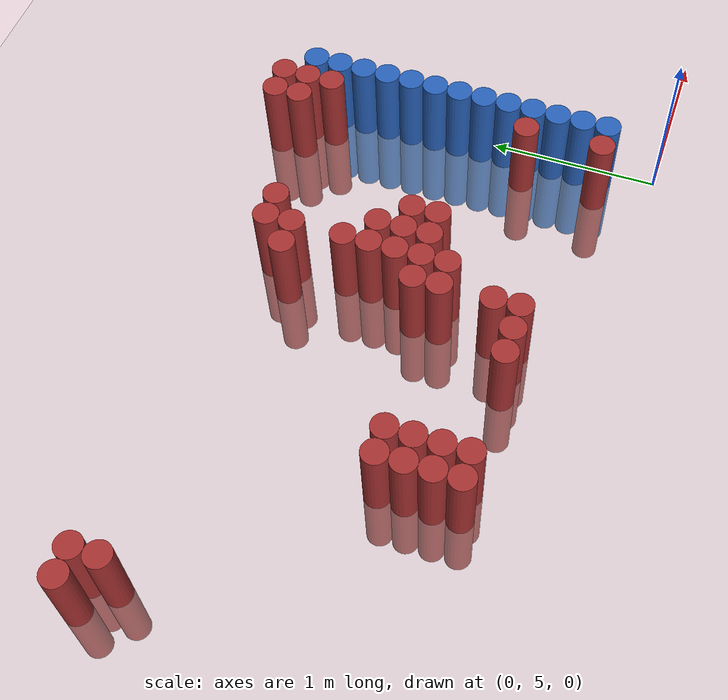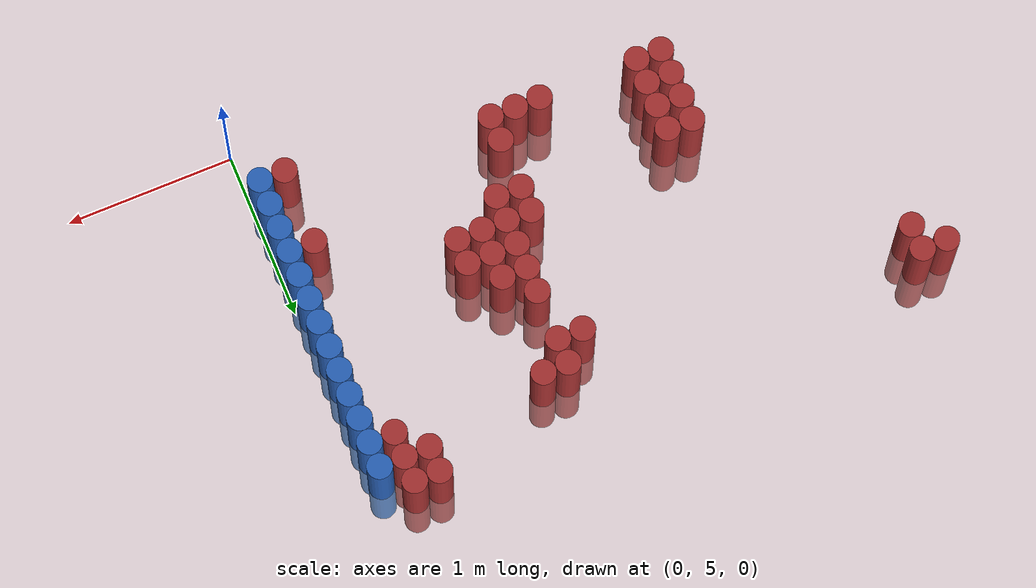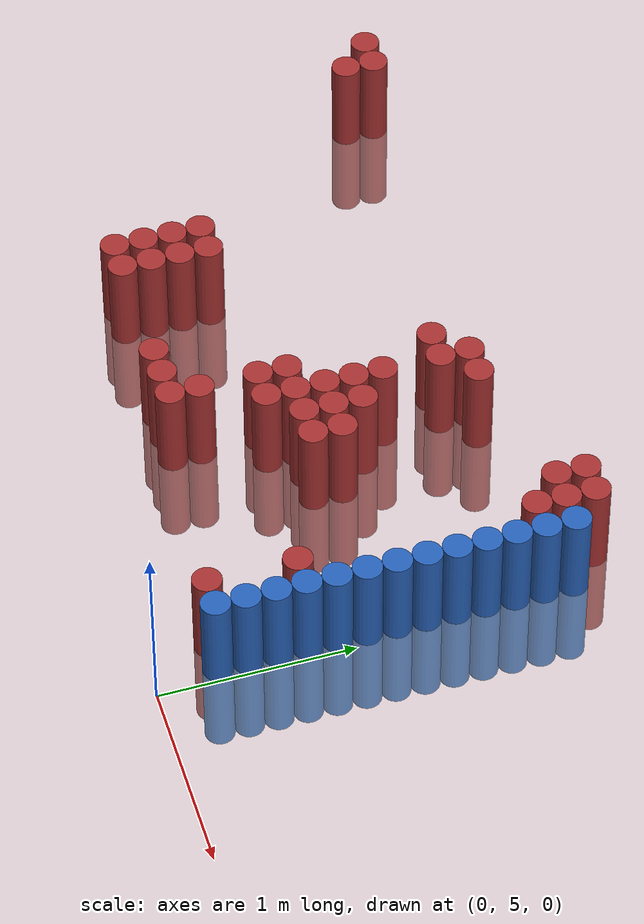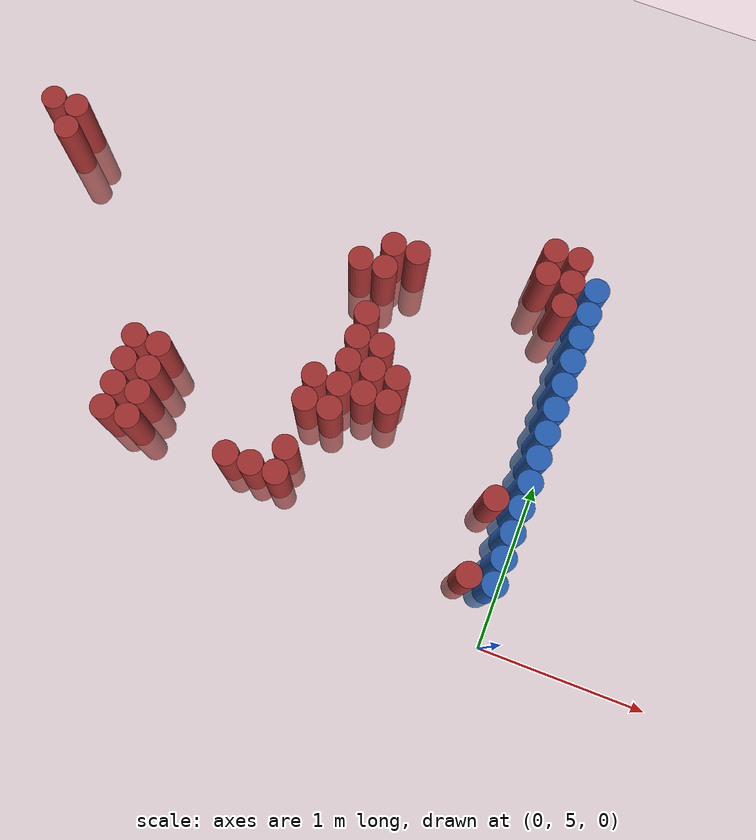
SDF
<sdf version="1.6">
 <world name="default">
  <model name="ground_plane">
   <static>1</static>
   <link name="link">
    <collision name="collision">
     <geometry><plane><normal>0 0 1</normal><size>100 100</size></plane></geometry>
     <surface><friction><ode><mu>100</mu><mu2>50</mu2></ode></friction></surface>
    </collision>
    <visual name="visual">
     <cast_shadows>0</cast_shadows>
     <geometry><plane><normal>0 0 1</normal><size>100 100</size></plane></geometry>
     <material>
      <script><uri>file://media/materials/scripts/gazebo.material</uri><name>Gazebo/Grey</name></script>
     </material>
    </visual>
   </link>
  </model>
  <model name="unit_cylinder_151">
   <static>1</static>
   <pose>-3.525000 7.125000 0.000000 0.000000 0.000000 0.000000</pose>
   <link name="link">
    <inertial>
     <mass>1</mass>
     <inertia><ixx>0.145833</ixx><ixy>0</ixy><ixz>0</ixz><iyy>0.145833</iyy><iyz>0</iyz><izz>0.125</izz></inertia>
    </inertial>
    <collision name="collision">
     <geometry><cylinder><radius>0.075000</radius><length>1</length></cylinder></geometry>
    </collision>
    <visual name="visual">
     <geometry><cylinder><radius>0.075000</radius><length>1</length></cylinder></geometry>
     <material>
      <ambient>0.648000 0.192000 0.192000 1</ambient>
      <diffuse>0.648000 0.192000 0.192000 1</diffuse>
     </material>
     <material>
      <script><name>Gazebo/Grey</name><uri>file://media/materials/scripts/gazebo.material</uri></script>
     </material>
    </visual>
   </link>
  </model>
  <model name="unit_cylinder_153">
   <static>1</static>
   <pose>-3.375000 6.975000 0.000000 0.000000 0.000000 0.000000</pose>
   <link name="link">
    <inertial>
     <mass>1</mass>
     <inertia><ixx>0.145833</ixx><ixy>0</ixy><ixz>0</ixz><iyy>0.145833</iyy><iyz>0</iyz><izz>0.125</izz></inertia>
    </inertial>
    <collision name="collision">
     <geometry><cylinder><radius>0.075000</radius><length>1</length></cylinder></geometry>
    </collision>
    <visual name="visual">
     <geometry><cylinder><radius>0.075000</radius><length>1</length></cylinder></geometry>
     <material>
      <ambient>0.648000 0.192000 0.192000 1</ambient>
      <diffuse>0.648000 0.192000 0.192000 1</diffuse>
     </material>
     <material>
      <script><name>Gazebo/Grey</name><uri>file://media/materials/scripts/gazebo.material</uri></script>
     </material>
    </visual>
   </link>
  </model>
  <model name="unit_cylinder_154">
   <static>1</static>
   <pose>-3.375000 7.125000 0.000000 0.000000 0.000000 0.000000</pose>
   <link name="link">
    <inertial>
     <mass>1</mass>
     <inertia><ixx>0.145833</ixx><ixy>0</ixy><ixz>0</ixz><iyy>0.145833</iyy><iyz>0</iyz><izz>0.125</izz></inertia>
    </inertial>
    <collision name="collision">
     <geometry><cylinder><radius>0.075000</radius><length>1</length></cylinder></geometry>
    </collision>
    <visual name="visual">
     <geometry><cylinder><radius>0.075000</radius><length>1</length></cylinder></geometry>
     <material>
      <ambient>0.648000 0.192000 0.192000 1</ambient>
      <diffuse>0.648000 0.192000 0.192000 1</diffuse>
     </material>
     <material>
      <script><name>Gazebo/Grey</name><uri>file://media/materials/scripts/gazebo.material</uri></script>
     </material>
    </visual>
   </link>
  </model>
  <model name="unit_cylinder_162">
   <static>1</static>
   <pose>-2.475000 5.475000 0.000000 0.000000 0.000000 0.000000</pose>
   <link name="link">
    <inertial>
     <mass>1</mass>
     <inertia><ixx>0.145833</ixx><ixy>0</ixy><ixz>0</ixz><iyy>0.145833</iyy><iyz>0</iyz><izz>0.125</izz></inertia>
    </inertial>
    <collision name="collision">
     <geometry><cylinder><radius>0.075000</radius><length>1</length></cylinder></geometry>
    </collision>
    <visual name="visual">
     <geometry><cylinder><radius>0.075000</radius><length>1</length></cylinder></geometry>
     <material>
      <ambient>0.648000 0.192000 0.192000 1</ambient>
      <diffuse>0.648000 0.192000 0.192000 1</diffuse>
     </material>
     <material>
      <script><name>Gazebo/Grey</name><uri>file://media/materials/scripts/gazebo.material</uri></script>
     </material>
    </visual>
   </link>
  </model>
  <model name="unit_cylinder_163">
   <static>1</static>
   <pose>-2.475000 5.625000 0.000000 0.000000 0.000000 0.000000</pose>
   <link name="link">
    <inertial>
     <mass>1</mass>
     <inertia><ixx>0.145833</ixx><ixy>0</ixy><ixz>0</ixz><iyy>0.145833</iyy><iyz>0</iyz><izz>0.125</izz></inertia>
    </inertial>
    <collision name="collision">
     <geometry><cylinder><radius>0.075000</radius><length>1</length></cylinder></geometry>
    </collision>
    <visual name="visual">
     <geometry><cylinder><radius>0.075000</radius><length>1</length></cylinder></geometry>
     <material>
      <ambient>0.648000 0.192000 0.192000 1</ambient>
      <diffuse>0.648000 0.192000 0.192000 1</diffuse>
     </material>
     <material>
      <script><name>Gazebo/Grey</name><uri>file://media/materials/scripts/gazebo.material</uri></script>
     </material>
    </visual>
   </link>
  </model>
  <model name="unit_cylinder_164">
   <static>1</static>
   <pose>-2.475000 5.775000 0.000000 0.000000 0.000000 0.000000</pose>
   <link name="link">
    <inertial>
     <mass>1</mass>
     <inertia><ixx>0.145833</ixx><ixy>0</ixy><ixz>0</ixz><iyy>0.145833</iyy><iyz>0</iyz><izz>0.125</izz></inertia>
    </inertial>
    <collision name="collision">
     <geometry><cylinder><radius>0.075000</radius><length>1</length></cylinder></geometry>
    </collision>
    <visual name="visual">
     <geometry><cylinder><radius>0.075000</radius><length>1</length></cylinder></geometry>
     <material>
      <ambient>0.648000 0.192000 0.192000 1</ambient>
      <diffuse>0.648000 0.192000 0.192000 1</diffuse>
     </material>
     <material>
      <script><name>Gazebo/Grey</name><uri>file://media/materials/scripts/gazebo.material</uri></script>
     </material>
    </visual>
   </link>
  </model>
  <model name="unit_cylinder_165">
   <static>1</static>
   <pose>-2.475000 5.925000 0.000000 0.000000 0.000000 0.000000</pose>
   <link name="link">
    <inertial>
     <mass>1</mass>
     <inertia><ixx>0.145833</ixx><ixy>0</ixy><ixz>0</ixz><iyy>0.145833</iyy><iyz>0</iyz><izz>0.125</izz></inertia>
    </inertial>
    <collision name="collision">
     <geometry><cylinder><radius>0.075000</radius><length>1</length></cylinder></geometry>
    </collision>
    <visual name="visual">
     <geometry><cylinder><radius>0.075000</radius><length>1</length></cylinder></geometry>
     <material>
      <ambient>0.648000 0.192000 0.192000 1</ambient>
      <diffuse>0.648000 0.192000 0.192000 1</diffuse>
     </material>
     <material>
      <script><name>Gazebo/Grey</name><uri>file://media/materials/scripts/gazebo.material</uri></script>
     </material>
    </visual>
   </link>
  </model>
  <model name="unit_cylinder_166">
   <static>1</static>
   <pose>-2.325000 5.475000 0.000000 0.000000 0.000000 0.000000</pose>
   <link name="link">
    <inertial>
     <mass>1</mass>
     <inertia><ixx>0.145833</ixx><ixy>0</ixy><ixz>0</ixz><iyy>0.145833</iyy><iyz>0</iyz><izz>0.125</izz></inertia>
    </inertial>
    <collision name="collision">
     <geometry><cylinder><radius>0.075000</radius><length>1</length></cylinder></geometry>
    </collision>
    <visual name="visual">
     <geometry><cylinder><radius>0.075000</radius><length>1</length></cylinder></geometry>
     <material>
      <ambient>0.648000 0.192000 0.192000 1</ambient>
      <diffuse>0.648000 0.192000 0.192000 1</diffuse>
     </material>
     <material>
      <script><name>Gazebo/Grey</name><uri>file://media/materials/scripts/gazebo.material</uri></script>
     </material>
    </visual>
   </link>
  </model>
  <model name="unit_cylinder_167">
   <static>1</static>
   <pose>-2.325000 5.625000 0.000000 0.000000 0.000000 0.000000</pose>
   <link name="link">
    <inertial>
     <mass>1</mass>
     <inertia><ixx>0.145833</ixx><ixy>0</ixy><ixz>0</ixz><iyy>0.145833</iyy><iyz>0</iyz><izz>0.125</izz></inertia>
    </inertial>
    <collision name="collision">
     <geometry><cylinder><radius>0.075000</radius><length>1</length></cylinder></geometry>
    </collision>
    <visual name="visual">
     <geometry><cylinder><radius>0.075000</radius><length>1</length></cylinder></geometry>
     <material>
      <ambient>0.648000 0.192000 0.192000 1</ambient>
      <diffuse>0.648000 0.192000 0.192000 1</diffuse>
     </material>
     <material>
      <script><name>Gazebo/Grey</name><uri>file://media/materials/scripts/gazebo.material</uri></script>
     </material>
    </visual>
   </link>
  </model>
  <model name="unit_cylinder_168">
   <static>1</static>
   <pose>-2.325000 5.775000 0.000000 0.000000 0.000000 0.000000</pose>
   <link name="link">
    <inertial>
     <mass>1</mass>
     <inertia><ixx>0.145833</ixx><ixy>0</ixy><ixz>0</ixz><iyy>0.145833</iyy><iyz>0</iyz><izz>0.125</izz></inertia>
    </inertial>
    <collision name="collision">
     <geometry><cylinder><radius>0.075000</radius><length>1</length></cylinder></geometry>
    </collision>
    <visual name="visual">
     <geometry><cylinder><radius>0.075000</radius><length>1</length></cylinder></geometry>
     <material>
      <ambient>0.648000 0.192000 0.192000 1</ambient>
      <diffuse>0.648000 0.192000 0.192000 1</diffuse>
     </material>
     <material>
      <script><name>Gazebo/Grey</name><uri>file://media/materials/scripts/gazebo.material</uri></script>
     </material>
    </visual>
   </link>
  </model>
  <model name="unit_cylinder_169">
   <static>1</static>
   <pose>-2.325000 5.925000 0.000000 0.000000 0.000000 0.000000</pose>
   <link name="link">
    <inertial>
     <mass>1</mass>
     <inertia><ixx>0.145833</ixx><ixy>0</ixy><ixz>0</ixz><iyy>0.145833</iyy><iyz>0</iyz><izz>0.125</izz></inertia>
    </inertial>
    <collision name="collision">
     <geometry><cylinder><radius>0.075000</radius><length>1</length></cylinder></geometry>
    </collision>
    <visual name="visual">
     <geometry><cylinder><radius>0.075000</radius><length>1</length></cylinder></geometry>
     <material>
      <ambient>0.648000 0.192000 0.192000 1</ambient>
      <diffuse>0.648000 0.192000 0.192000 1</diffuse>
     </material>
     <material>
      <script><name>Gazebo/Grey</name><uri>file://media/materials/scripts/gazebo.material</uri></script>
     </material>
    </visual>
   </link>
  </model>
  <model name="unit_cylinder_179">
   <static>1</static>
   <pose>-1.725000 5.475000 0.000000 0.000000 0.000000 0.000000</pose>
   <link name="link">
    <inertial>
     <mass>1</mass>
     <inertia><ixx>0.145833</ixx><ixy>0</ixy><ixz>0</ixz><iyy>0.145833</iyy><iyz>0</iyz><izz>0.125</izz></inertia>
    </inertial>
    <collision name="collision">
     <geometry><cylinder><radius>0.075000</radius><length>1</length></cylinder></geometry>
    </collision>
    <visual name="visual">
     <geometry><cylinder><radius>0.075000</radius><length>1</length></cylinder></geometry>
     <material>
      <ambient>0.648000 0.192000 0.192000 1</ambient>
      <diffuse>0.648000 0.192000 0.192000 1</diffuse>
     </material>
     <material>
      <script><name>Gazebo/Grey</name><uri>file://media/materials/scripts/gazebo.material</uri></script>
     </material>
    </visual>
   </link>
  </model>
  <model name="unit_cylinder_183">
   <static>1</static>
   <pose>-1.575000 5.475000 0.000000 0.000000 0.000000 0.000000</pose>
   <link name="link">
    <inertial>
     <mass>1</mass>
     <inertia><ixx>0.145833</ixx><ixy>0</ixy><ixz>0</ixz><iyy>0.145833</iyy><iyz>0</iyz><izz>0.125</izz></inertia>
    </inertial>
    <collision name="collision">
     <geometry><cylinder><radius>0.075000</radius><length>1</length></cylinder></geometry>
    </collision>
    <visual name="visual">
     <geometry><cylinder><radius>0.075000</radius><length>1</length></cylinder></geometry>
     <material>
      <ambient>0.648000 0.192000 0.192000 1</ambient>
      <diffuse>0.648000 0.192000 0.192000 1</diffuse>
     </material>
     <material>
      <script><name>Gazebo/Grey</name><uri>file://media/materials/scripts/gazebo.material</uri></script>
     </material>
    </visual>
   </link>
  </model>
  <model name="unit_cylinder_185">
   <static>1</static>
   <pose>-1.425000 5.475000 0.000000 0.000000 0.000000 0.000000</pose>
   <link name="link">
    <inertial>
     <mass>1</mass>
     <inertia><ixx>0.145833</ixx><ixy>0</ixy><ixz>0</ixz><iyy>0.145833</iyy><iyz>0</iyz><izz>0.125</izz></inertia>
    </inertial>
    <collision name="collision">
     <geometry><cylinder><radius>0.075000</radius><length>1</length></cylinder></geometry>
    </collision>
    <visual name="visual">
     <geometry><cylinder><radius>0.075000</radius><length>1</length></cylinder></geometry>
     <material>
      <ambient>0.648000 0.192000 0.192000 1</ambient>
      <diffuse>0.648000 0.192000 0.192000 1</diffuse>
     </material>
     <material>
      <script><name>Gazebo/Grey</name><uri>file://media/materials/scripts/gazebo.material</uri></script>
     </material>
    </visual>
   </link>
  </model>
  <model name="unit_cylinder_186">
   <static>1</static>
   <pose>-1.425000 5.625000 0.000000 0.000000 0.000000 0.000000</pose>
   <link name="link">
    <inertial>
     <mass>1</mass>
     <inertia><ixx>0.145833</ixx><ixy>0</ixy><ixz>0</ixz><iyy>0.145833</iyy><iyz>0</iyz><izz>0.125</izz></inertia>
    </inertial>
    <collision name="collision">
     <geometry><cylinder><radius>0.075000</radius><length>1</length></cylinder></geometry>
    </collision>
    <visual name="visual">
     <geometry><cylinder><radius>0.075000</radius><length>1</length></cylinder></geometry>
     <material>
      <ambient>0.648000 0.192000 0.192000 1</ambient>
      <diffuse>0.648000 0.192000 0.192000 1</diffuse>
     </material>
     <material>
      <script><name>Gazebo/Grey</name><uri>file://media/materials/scripts/gazebo.material</uri></script>
     </material>
    </visual>
   </link>
  </model>
  <model name="unit_cylinder_187">
   <static>1</static>
   <pose>-1.425000 5.925000 0.000000 0.000000 0.000000 0.000000</pose>
   <link name="link">
    <inertial>
     <mass>1</mass>
     <inertia><ixx>0.145833</ixx><ixy>0</ixy><ixz>0</ixz><iyy>0.145833</iyy><iyz>0</iyz><izz>0.125</izz></inertia>
    </inertial>
    <collision name="collision">
     <geometry><cylinder><radius>0.075000</radius><length>1</length></cylinder></geometry>
    </collision>
    <visual name="visual">
     <geometry><cylinder><radius>0.075000</radius><length>1</length></cylinder></geometry>
     <material>
      <ambient>0.648000 0.192000 0.192000 1</ambient>
      <diffuse>0.648000 0.192000 0.192000 1</diffuse>
     </material>
     <material>
      <script><name>Gazebo/Grey</name><uri>file://media/materials/scripts/gazebo.material</uri></script>
     </material>
    </visual>
   </link>
  </model>
  <model name="unit_cylinder_188">
   <static>1</static>
   <pose>-1.425000 6.075000 0.000000 0.000000 0.000000 0.000000</pose>
   <link name="link">
    <inertial>
     <mass>1</mass>
     <inertia><ixx>0.145833</ixx><ixy>0</ixy><ixz>0</ixz><iyy>0.145833</iyy><iyz>0</iyz><izz>0.125</izz></inertia>
    </inertial>
    <collision name="collision">
     <geometry><cylinder><radius>0.075000</radius><length>1</length></cylinder></geometry>
    </collision>
    <visual name="visual">
     <geometry><cylinder><radius>0.075000</radius><length>1</length></cylinder></geometry>
     <material>
      <ambient>0.648000 0.192000 0.192000 1</ambient>
      <diffuse>0.648000 0.192000 0.192000 1</diffuse>
     </material>
     <material>
      <script><name>Gazebo/Grey</name><uri>file://media/materials/scripts/gazebo.material</uri></script>
     </material>
    </visual>
   </link>
  </model>
  <model name="unit_cylinder_189">
   <static>1</static>
   <pose>-1.425000 6.825000 0.000000 0.000000 0.000000 0.000000</pose>
   <link name="link">
    <inertial>
     <mass>1</mass>
     <inertia><ixx>0.145833</ixx><ixy>0</ixy><ixz>0</ixz><iyy>0.145833</iyy><iyz>0</iyz><izz>0.125</izz></inertia>
    </inertial>
    <collision name="collision">
     <geometry><cylinder><radius>0.075000</radius><length>1</length></cylinder></geometry>
    </collision>
    <visual name="visual">
     <geometry><cylinder><radius>0.075000</radius><length>1</length></cylinder></geometry>
     <material>
      <ambient>0.648000 0.192000 0.192000 1</ambient>
      <diffuse>0.648000 0.192000 0.192000 1</diffuse>
     </material>
     <material>
      <script><name>Gazebo/Grey</name><uri>file://media/materials/scripts/gazebo.material</uri></script>
     </material>
    </visual>
   </link>
  </model>
  <model name="unit_cylinder_190">
   <static>1</static>
   <pose>-1.275000 5.925000 0.000000 0.000000 0.000000 0.000000</pose>
   <link name="link">
    <inertial>
     <mass>1</mass>
     <inertia><ixx>0.145833</ixx><ixy>0</ixy><ixz>0</ixz><iyy>0.145833</iyy><iyz>0</iyz><izz>0.125</izz></inertia>
    </inertial>
    <collision name="collision">
     <geometry><cylinder><radius>0.075000</radius><length>1</length></cylinder></geometry>
    </collision>
    <visual name="visual">
     <geometry><cylinder><radius>0.075000</radius><length>1</length></cylinder></geometry>
     <material>
      <ambient>0.648000 0.192000 0.192000 1</ambient>
      <diffuse>0.648000 0.192000 0.192000 1</diffuse>
     </material>
     <material>
      <script><name>Gazebo/Grey</name><uri>file://media/materials/scripts/gazebo.material</uri></script>
     </material>
    </visual>
   </link>
  </model>
  <model name="unit_cylinder_191">
   <static>1</static>
   <pose>-1.275000 6.075000 0.000000 0.000000 0.000000 0.000000</pose>
   <link name="link">
    <inertial>
     <mass>1</mass>
     <inertia><ixx>0.145833</ixx><ixy>0</ixy><ixz>0</ixz><iyy>0.145833</iyy><iyz>0</iyz><izz>0.125</izz></inertia>
    </inertial>
    <collision name="collision">
     <geometry><cylinder><radius>0.075000</radius><length>1</length></cylinder></geometry>
    </collision>
    <visual name="visual">
     <geometry><cylinder><radius>0.075000</radius><length>1</length></cylinder></geometry>
     <material>
      <ambient>0.648000 0.192000 0.192000 1</ambient>
      <diffuse>0.648000 0.192000 0.192000 1</diffuse>
     </material>
     <material>
      <script><name>Gazebo/Grey</name><uri>file://media/materials/scripts/gazebo.material</uri></script>
     </material>
    </visual>
   </link>
  </model>
  <model name="unit_cylinder_192">
   <static>1</static>
   <pose>-1.275000 6.225000 0.000000 0.000000 0.000000 0.000000</pose>
   <link name="link">
    <inertial>
     <mass>1</mass>
     <inertia><ixx>0.145833</ixx><ixy>0</ixy><ixz>0</ixz><iyy>0.145833</iyy><iyz>0</iyz><izz>0.125</izz></inertia>
    </inertial>
    <collision name="collision">
     <geometry><cylinder><radius>0.075000</radius><length>1</length></cylinder></geometry>
    </collision>
    <visual name="visual">
     <geometry><cylinder><radius>0.075000</radius><length>1</length></cylinder></geometry>
     <material>
      <ambient>0.648000 0.192000 0.192000 1</ambient>
      <diffuse>0.648000 0.192000 0.192000 1</diffuse>
     </material>
     <material>
      <script><name>Gazebo/Grey</name><uri>file://media/materials/scripts/gazebo.material</uri></script>
     </material>
    </visual>
   </link>
  </model>
  <model name="unit_cylinder_193">
   <static>1</static>
   <pose>-1.275000 6.375000 0.000000 0.000000 0.000000 0.000000</pose>
   <link name="link">
    <inertial>
     <mass>1</mass>
     <inertia><ixx>0.145833</ixx><ixy>0</ixy><ixz>0</ixz><iyy>0.145833</iyy><iyz>0</iyz><izz>0.125</izz></inertia>
    </inertial>
    <collision name="collision">
     <geometry><cylinder><radius>0.075000</radius><length>1</length></cylinder></geometry>
    </collision>
    <visual name="visual">
     <geometry><cylinder><radius>0.075000</radius><length>1</length></cylinder></geometry>
     <material>
      <ambient>0.648000 0.192000 0.192000 1</ambient>
      <diffuse>0.648000 0.192000 0.192000 1</diffuse>
     </material>
     <material>
      <script><name>Gazebo/Grey</name><uri>file://media/materials/scripts/gazebo.material</uri></script>
     </material>
    </visual>
   </link>
  </model>
  <model name="unit_cylinder_194">
   <static>1</static>
   <pose>-1.275000 6.525000 0.000000 0.000000 0.000000 0.000000</pose>
   <link name="link">
    <inertial>
     <mass>1</mass>
     <inertia><ixx>0.145833</ixx><ixy>0</ixy><ixz>0</ixz><iyy>0.145833</iyy><iyz>0</iyz><izz>0.125</izz></inertia>
    </inertial>
    <collision name="collision">
     <geometry><cylinder><radius>0.075000</radius><length>1</length></cylinder></geometry>
    </collision>
    <visual name="visual">
     <geometry><cylinder><radius>0.075000</radius><length>1</length></cylinder></geometry>
     <material>
      <ambient>0.648000 0.192000 0.192000 1</ambient>
      <diffuse>0.648000 0.192000 0.192000 1</diffuse>
     </material>
     <material>
      <script><name>Gazebo/Grey</name><uri>file://media/materials/scripts/gazebo.material</uri></script>
     </material>
    </visual>
   </link>
  </model>
  <model name="unit_cylinder_195">
   <static>1</static>
   <pose>-1.275000 6.825000 0.000000 0.000000 0.000000 0.000000</pose>
   <link name="link">
    <inertial>
     <mass>1</mass>
     <inertia><ixx>0.145833</ixx><ixy>0</ixy><ixz>0</ixz><iyy>0.145833</iyy><iyz>0</iyz><izz>0.125</izz></inertia>
    </inertial>
    <collision name="collision">
     <geometry><cylinder><radius>0.075000</radius><length>1</length></cylinder></geometry>
    </collision>
    <visual name="visual">
     <geometry><cylinder><radius>0.075000</radius><length>1</length></cylinder></geometry>
     <material>
      <ambient>0.648000 0.192000 0.192000 1</ambient>
      <diffuse>0.648000 0.192000 0.192000 1</diffuse>
     </material>
     <material>
      <script><name>Gazebo/Grey</name><uri>file://media/materials/scripts/gazebo.material</uri></script>
     </material>
    </visual>
   </link>
  </model>
  <model name="unit_cylinder_196">
   <static>1</static>
   <pose>-1.275000 6.975000 0.000000 0.000000 0.000000 0.000000</pose>
   <link name="link">
    <inertial>
     <mass>1</mass>
     <inertia><ixx>0.145833</ixx><ixy>0</ixy><ixz>0</ixz><iyy>0.145833</iyy><iyz>0</iyz><izz>0.125</izz></inertia>
    </inertial>
    <collision name="collision">
     <geometry><cylinder><radius>0.075000</radius><length>1</length></cylinder></geometry>
    </collision>
    <visual name="visual">
     <geometry><cylinder><radius>0.075000</radius><length>1</length></cylinder></geometry>
     <material>
      <ambient>0.648000 0.192000 0.192000 1</ambient>
      <diffuse>0.648000 0.192000 0.192000 1</diffuse>
     </material>
     <material>
      <script><name>Gazebo/Grey</name><uri>file://media/materials/scripts/gazebo.material</uri></script>
     </material>
    </visual>
   </link>
  </model>
  <model name="unit_cylinder_197">
   <static>1</static>
   <pose>-1.125000 6.075000 0.000000 0.000000 0.000000 0.000000</pose>
   <link name="link">
    <inertial>
     <mass>1</mass>
     <inertia><ixx>0.145833</ixx><ixy>0</ixy><ixz>0</ixz><iyy>0.145833</iyy><iyz>0</iyz><izz>0.125</izz></inertia>
    </inertial>
    <collision name="collision">
     <geometry><cylinder><radius>0.075000</radius><length>1</length></cylinder></geometry>
    </collision>
    <visual name="visual">
     <geometry><cylinder><radius>0.075000</radius><length>1</length></cylinder></geometry>
     <material>
      <ambient>0.648000 0.192000 0.192000 1</ambient>
      <diffuse>0.648000 0.192000 0.192000 1</diffuse>
     </material>
     <material>
      <script><name>Gazebo/Grey</name><uri>file://media/materials/scripts/gazebo.material</uri></script>
     </material>
    </visual>
   </link>
  </model>
  <model name="unit_cylinder_198">
   <static>1</static>
   <pose>-1.125000 6.225000 0.000000 0.000000 0.000000 0.000000</pose>
   <link name="link">
    <inertial>
     <mass>1</mass>
     <inertia><ixx>0.145833</ixx><ixy>0</ixy><ixz>0</ixz><iyy>0.145833</iyy><iyz>0</iyz><izz>0.125</izz></inertia>
    </inertial>
    <collision name="collision">
     <geometry><cylinder><radius>0.075000</radius><length>1</length></cylinder></geometry>
    </collision>
    <visual name="visual">
     <geometry><cylinder><radius>0.075000</radius><length>1</length></cylinder></geometry>
     <material>
      <ambient>0.648000 0.192000 0.192000 1</ambient>
      <diffuse>0.648000 0.192000 0.192000 1</diffuse>
     </material>
     <material>
      <script><name>Gazebo/Grey</name><uri>file://media/materials/scripts/gazebo.material</uri></script>
     </material>
    </visual>
   </link>
  </model>
  <model name="unit_cylinder_199">
   <static>1</static>
   <pose>-1.125000 6.375000 0.000000 0.000000 0.000000 0.000000</pose>
   <link name="link">
    <inertial>
     <mass>1</mass>
     <inertia><ixx>0.145833</ixx><ixy>0</ixy><ixz>0</ixz><iyy>0.145833</iyy><iyz>0</iyz><izz>0.125</izz></inertia>
    </inertial>
    <collision name="collision">
     <geometry><cylinder><radius>0.075000</radius><length>1</length></cylinder></geometry>
    </collision>
    <visual name="visual">
     <geometry><cylinder><radius>0.075000</radius><length>1</length></cylinder></geometry>
     <material>
      <ambient>0.648000 0.192000 0.192000 1</ambient>
      <diffuse>0.648000 0.192000 0.192000 1</diffuse>
     </material>
     <material>
      <script><name>Gazebo/Grey</name><uri>file://media/materials/scripts/gazebo.material</uri></script>
     </material>
    </visual>
   </link>
  </model>
  <model name="unit_cylinder_200">
   <static>1</static>
   <pose>-1.125000 6.975000 0.000000 0.000000 0.000000 0.000000</pose>
   <link name="link">
    <inertial>
     <mass>1</mass>
     <inertia><ixx>0.145833</ixx><ixy>0</ixy><ixz>0</ixz><iyy>0.145833</iyy><iyz>0</iyz><izz>0.125</izz></inertia>
    </inertial>
    <collision name="collision">
     <geometry><cylinder><radius>0.075000</radius><length>1</length></cylinder></geometry>
    </collision>
    <visual name="visual">
     <geometry><cylinder><radius>0.075000</radius><length>1</length></cylinder></geometry>
     <material>
      <ambient>0.648000 0.192000 0.192000 1</ambient>
      <diffuse>0.648000 0.192000 0.192000 1</diffuse>
     </material>
     <material>
      <script><name>Gazebo/Grey</name><uri>file://media/materials/scripts/gazebo.material</uri></script>
     </material>
    </visual>
   </link>
  </model>
  <model name="unit_cylinder_204">
   <static>1</static>
   <pose>-0.975000 6.075000 0.000000 0.000000 0.000000 0.000000</pose>
   <link name="link">
    <inertial>
     <mass>1</mass>
     <inertia><ixx>0.145833</ixx><ixy>0</ixy><ixz>0</ixz><iyy>0.145833</iyy><iyz>0</iyz><izz>0.125</izz></inertia>
    </inertial>
    <collision name="collision">
     <geometry><cylinder><radius>0.075000</radius><length>1</length></cylinder></geometry>
    </collision>
    <visual name="visual">
     <geometry><cylinder><radius>0.075000</radius><length>1</length></cylinder></geometry>
     <material>
      <ambient>0.648000 0.192000 0.192000 1</ambient>
      <diffuse>0.648000 0.192000 0.192000 1</diffuse>
     </material>
     <material>
      <script><name>Gazebo/Grey</name><uri>file://media/materials/scripts/gazebo.material</uri></script>
     </material>
    </visual>
   </link>
  </model>
  <model name="unit_cylinder_205">
   <static>1</static>
   <pose>-0.975000 6.225000 0.000000 0.000000 0.000000 0.000000</pose>
   <link name="link">
    <inertial>
     <mass>1</mass>
     <inertia><ixx>0.145833</ixx><ixy>0</ixy><ixz>0</ixz><iyy>0.145833</iyy><iyz>0</iyz><izz>0.125</izz></inertia>
    </inertial>
    <collision name="collision">
     <geometry><cylinder><radius>0.075000</radius><length>1</length></cylinder></geometry>
    </collision>
    <visual name="visual">
     <geometry><cylinder><radius>0.075000</radius><length>1</length></cylinder></geometry>
     <material>
      <ambient>0.648000 0.192000 0.192000 1</ambient>
      <diffuse>0.648000 0.192000 0.192000 1</diffuse>
     </material>
     <material>
      <script><name>Gazebo/Grey</name><uri>file://media/materials/scripts/gazebo.material</uri></script>
     </material>
    </visual>
   </link>
  </model>
  <model name="unit_cylinder_212">
   <static>1</static>
   <pose>-0.375000 7.125000 0.000000 0.000000 0.000000 0.000000</pose>
   <link name="link">
    <inertial>
     <mass>1</mass>
     <inertia><ixx>0.145833</ixx><ixy>0</ixy><ixz>0</ixz><iyy>0.145833</iyy><iyz>0</iyz><izz>0.125</izz></inertia>
    </inertial>
    <collision name="collision">
     <geometry><cylinder><radius>0.075000</radius><length>1</length></cylinder></geometry>
    </collision>
    <visual name="visual">
     <geometry><cylinder><radius>0.075000</radius><length>1</length></cylinder></geometry>
     <material>
      <ambient>0.648000 0.192000 0.192000 1</ambient>
      <diffuse>0.648000 0.192000 0.192000 1</diffuse>
     </material>
     <material>
      <script><name>Gazebo/Grey</name><uri>file://media/materials/scripts/gazebo.material</uri></script>
     </material>
    </visual>
   </link>
  </model>
  <model name="unit_cylinder_213">
   <static>1</static>
   <pose>-0.375000 7.275000 0.000000 0.000000 0.000000 0.000000</pose>
   <link name="link">
    <inertial>
     <mass>1</mass>
     <inertia><ixx>0.145833</ixx><ixy>0</ixy><ixz>0</ixz><iyy>0.145833</iyy><iyz>0</iyz><izz>0.125</izz></inertia>
    </inertial>
    <collision name="collision">
     <geometry><cylinder><radius>0.075000</radius><length>1</length></cylinder></geometry>
    </collision>
    <visual name="visual">
     <geometry><cylinder><radius>0.075000</radius><length>1</length></cylinder></geometry>
     <material>
      <ambient>0.648000 0.192000 0.192000 1</ambient>
      <diffuse>0.648000 0.192000 0.192000 1</diffuse>
     </material>
     <material>
      <script><name>Gazebo/Grey</name><uri>file://media/materials/scripts/gazebo.material</uri></script>
     </material>
    </visual>
   </link>
  </model>
  <model name="unit_cylinder_216">
   <static>1</static>
   <pose>-0.225000 5.325000 0.000000 0.000000 0.000000 0.000000</pose>
   <link name="link">
    <inertial>
     <mass>1</mass>
     <inertia><ixx>0.145833</ixx><ixy>0</ixy><ixz>0</ixz><iyy>0.145833</iyy><iyz>0</iyz><izz>0.125</izz></inertia>
    </inertial>
    <collision name="collision">
     <geometry><cylinder><radius>0.075000</radius><length>1</length></cylinder></geometry>
    </collision>
    <visual name="visual">
     <geometry><cylinder><radius>0.075000</radius><length>1</length></cylinder></geometry>
     <material>
      <ambient>0.648000 0.192000 0.192000 1</ambient>
      <diffuse>0.648000 0.192000 0.192000 1</diffuse>
     </material>
     <material>
      <script><name>Gazebo/Grey</name><uri>file://media/materials/scripts/gazebo.material</uri></script>
     </material>
    </visual>
   </link>
  </model>
  <model name="unit_cylinder_217">
   <static>1</static>
   <pose>-0.225000 5.775000 0.000000 0.000000 0.000000 0.000000</pose>
   <link name="link">
    <inertial>
     <mass>1</mass>
     <inertia><ixx>0.145833</ixx><ixy>0</ixy><ixz>0</ixz><iyy>0.145833</iyy><iyz>0</iyz><izz>0.125</izz></inertia>
    </inertial>
    <collision name="collision">
     <geometry><cylinder><radius>0.075000</radius><length>1</length></cylinder></geometry>
    </collision>
    <visual name="visual">
     <geometry><cylinder><radius>0.075000</radius><length>1</length></cylinder></geometry>
     <material>
      <ambient>0.648000 0.192000 0.192000 1</ambient>
      <diffuse>0.648000 0.192000 0.192000 1</diffuse>
     </material>
     <material>
      <script><name>Gazebo/Grey</name><uri>file://media/materials/scripts/gazebo.material</uri></script>
     </material>
    </visual>
   </link>
  </model>
  <model name="unit_cylinder_218">
   <static>1</static>
   <pose>-0.225000 6.975000 0.000000 0.000000 0.000000 0.000000</pose>
   <link name="link">
    <inertial>
     <mass>1</mass>
     <inertia><ixx>0.145833</ixx><ixy>0</ixy><ixz>0</ixz><iyy>0.145833</iyy><iyz>0</iyz><izz>0.125</izz></inertia>
    </inertial>
    <collision name="collision">
     <geometry><cylinder><radius>0.075000</radius><length>1</length></cylinder></geometry>
    </collision>
    <visual name="visual">
     <geometry><cylinder><radius>0.075000</radius><length>1</length></cylinder></geometry>
     <material>
      <ambient>0.648000 0.192000 0.192000 1</ambient>
      <diffuse>0.648000 0.192000 0.192000 1</diffuse>
     </material>
     <material>
      <script><name>Gazebo/Grey</name><uri>file://media/materials/scripts/gazebo.material</uri></script>
     </material>
    </visual>
   </link>
  </model>
  <model name="unit_cylinder_219">
   <static>1</static>
   <pose>-0.225000 7.125000 0.000000 0.000000 0.000000 0.000000</pose>
   <link name="link">
    <inertial>
     <mass>1</mass>
     <inertia><ixx>0.145833</ixx><ixy>0</ixy><ixz>0</ixz><iyy>0.145833</iyy><iyz>0</iyz><izz>0.125</izz></inertia>
    </inertial>
    <collision name="collision">
     <geometry><cylinder><radius>0.075000</radius><length>1</length></cylinder></geometry>
    </collision>
    <visual name="visual">
     <geometry><cylinder><radius>0.075000</radius><length>1</length></cylinder></geometry>
     <material>
      <ambient>0.648000 0.192000 0.192000 1</ambient>
      <diffuse>0.648000 0.192000 0.192000 1</diffuse>
     </material>
     <material>
      <script><name>Gazebo/Grey</name><uri>file://media/materials/scripts/gazebo.material</uri></script>
     </material>
    </visual>
   </link>
  </model>
  <model name="unit_cylinder_220">
   <static>1</static>
   <pose>-0.225000 7.275000 0.000000 0.000000 0.000000 0.000000</pose>
   <link name="link">
    <inertial>
     <mass>1</mass>
     <inertia><ixx>0.145833</ixx><ixy>0</ixy><ixz>0</ixz><iyy>0.145833</iyy><iyz>0</iyz><izz>0.125</izz></inertia>
    </inertial>
    <collision name="collision">
     <geometry><cylinder><radius>0.075000</radius><length>1</length></cylinder></geometry>
    </collision>
    <visual name="visual">
     <geometry><cylinder><radius>0.075000</radius><length>1</length></cylinder></geometry>
     <material>
      <ambient>0.648000 0.192000 0.192000 1</ambient>
      <diffuse>0.648000 0.192000 0.192000 1</diffuse>
     </material>
     <material>
      <script><name>Gazebo/Grey</name><uri>file://media/materials/scripts/gazebo.material</uri></script>
     </material>
    </visual>
   </link>
  </model>
  <model name="unit_cylinder_227">
   <static>1</static>
   <pose>-0.075000 5.325000 0.000000 0.000000 0.000000 0.000000</pose>
   <link name="link">
    <inertial>
     <mass>1</mass>
     <inertia><ixx>0.145833</ixx><ixy>0</ixy><ixz>0</ixz><iyy>0.145833</iyy><iyz>0</iyz><izz>0.125</izz></inertia>
    </inertial>
    <collision name="collision">
     <geometry><cylinder><radius>0.075000</radius><length>1</length></cylinder></geometry>
    </collision>
    <visual name="visual">
     <geometry><cylinder><radius>0.075000</radius><length>1</length></cylinder></geometry>
     <material>
      <ambient>0.152000 0.379000 0.720000 1</ambient>
      <diffuse>0.152000 0.379000 0.720000 1</diffuse>
     </material>
     <material>
      <script><name>Gazebo/Grey</name><uri>file://media/materials/scripts/gazebo.material</uri></script>
     </material>
    </visual>
   </link>
  </model>
  <model name="unit_cylinder_228">
   <static>1</static>
   <pose>-0.075000 5.475000 0.000000 0.000000 0.000000 0.000000</pose>
   <link name="link">
    <inertial>
     <mass>1</mass>
     <inertia><ixx>0.145833</ixx><ixy>0</ixy><ixz>0</ixz><iyy>0.145833</iyy><iyz>0</iyz><izz>0.125</izz></inertia>
    </inertial>
    <collision name="collision">
     <geometry><cylinder><radius>0.075000</radius><length>1</length></cylinder></geometry>
    </collision>
    <visual name="visual">
     <geometry><cylinder><radius>0.075000</radius><length>1</length></cylinder></geometry>
     <material>
      <ambient>0.152000 0.379000 0.720000 1</ambient>
      <diffuse>0.152000 0.379000 0.720000 1</diffuse>
     </material>
     <material>
      <script><name>Gazebo/Grey</name><uri>file://media/materials/scripts/gazebo.material</uri></script>
     </material>
    </visual>
   </link>
  </model>
  <model name="unit_cylinder_229">
   <static>1</static>
   <pose>-0.075000 5.625000 0.000000 0.000000 0.000000 0.000000</pose>
   <link name="link">
    <inertial>
     <mass>1</mass>
     <inertia><ixx>0.145833</ixx><ixy>0</ixy><ixz>0</ixz><iyy>0.145833</iyy><iyz>0</iyz><izz>0.125</izz></inertia>
    </inertial>
    <collision name="collision">
     <geometry><cylinder><radius>0.075000</radius><length>1</length></cylinder></geometry>
    </collision>
    <visual name="visual">
     <geometry><cylinder><radius>0.075000</radius><length>1</length></cylinder></geometry>
     <material>
      <ambient>0.152000 0.379000 0.720000 1</ambient>
      <diffuse>0.152000 0.379000 0.720000 1</diffuse>
     </material>
     <material>
      <script><name>Gazebo/Grey</name><uri>file://media/materials/scripts/gazebo.material</uri></script>
     </material>
    </visual>
   </link>
  </model>
  <model name="unit_cylinder_230">
   <static>1</static>
   <pose>-0.075000 5.775000 0.000000 0.000000 0.000000 0.000000</pose>
   <link name="link">
    <inertial>
     <mass>1</mass>
     <inertia><ixx>0.145833</ixx><ixy>0</ixy><ixz>0</ixz><iyy>0.145833</iyy><iyz>0</iyz><izz>0.125</izz></inertia>
    </inertial>
    <collision name="collision">
     <geometry><cylinder><radius>0.075000</radius><length>1</length></cylinder></geometry>
    </collision>
    <visual name="visual">
     <geometry><cylinder><radius>0.075000</radius><length>1</length></cylinder></geometry>
     <material>
      <ambient>0.152000 0.379000 0.720000 1</ambient>
      <diffuse>0.152000 0.379000 0.720000 1</diffuse>
     </material>
     <material>
      <script><name>Gazebo/Grey</name><uri>file://media/materials/scripts/gazebo.material</uri></script>
     </material>
    </visual>
   </link>
  </model>
  <model name="unit_cylinder_231">
   <static>1</static>
   <pose>-0.075000 5.925000 0.000000 0.000000 0.000000 0.000000</pose>
   <link name="link">
    <inertial>
     <mass>1</mass>
     <inertia><ixx>0.145833</ixx><ixy>0</ixy><ixz>0</ixz><iyy>0.145833</iyy><iyz>0</iyz><izz>0.125</izz></inertia>
    </inertial>
    <collision name="collision">
     <geometry><cylinder><radius>0.075000</radius><length>1</length></cylinder></geometry>
    </collision>
    <visual name="visual">
     <geometry><cylinder><radius>0.075000</radius><length>1</length></cylinder></geometry>
     <material>
      <ambient>0.152000 0.379000 0.720000 1</ambient>
      <diffuse>0.152000 0.379000 0.720000 1</diffuse>
     </material>
     <material>
      <script><name>Gazebo/Grey</name><uri>file://media/materials/scripts/gazebo.material</uri></script>
     </material>
    </visual>
   </link>
  </model>
  <model name="unit_cylinder_232">
   <static>1</static>
   <pose>-0.075000 6.075000 0.000000 0.000000 0.000000 0.000000</pose>
   <link name="link">
    <inertial>
     <mass>1</mass>
     <inertia><ixx>0.145833</ixx><ixy>0</ixy><ixz>0</ixz><iyy>0.145833</iyy><iyz>0</iyz><izz>0.125</izz></inertia>
    </inertial>
    <collision name="collision">
     <geometry><cylinder><radius>0.075000</radius><length>1</length></cylinder></geometry>
    </collision>
    <visual name="visual">
     <geometry><cylinder><radius>0.075000</radius><length>1</length></cylinder></geometry>
     <material>
      <ambient>0.152000 0.379000 0.720000 1</ambient>
      <diffuse>0.152000 0.379000 0.720000 1</diffuse>
     </material>
     <material>
      <script><name>Gazebo/Grey</name><uri>file://media/materials/scripts/gazebo.material</uri></script>
     </material>
    </visual>
   </link>
  </model>
  <model name="unit_cylinder_233">
   <static>1</static>
   <pose>-0.075000 6.225000 0.000000 0.000000 0.000000 0.000000</pose>
   <link name="link">
    <inertial>
     <mass>1</mass>
     <inertia><ixx>0.145833</ixx><ixy>0</ixy><ixz>0</ixz><iyy>0.145833</iyy><iyz>0</iyz><izz>0.125</izz></inertia>
    </inertial>
    <collision name="collision">
     <geometry><cylinder><radius>0.075000</radius><length>1</length></cylinder></geometry>
    </collision>
    <visual name="visual">
     <geometry><cylinder><radius>0.075000</radius><length>1</length></cylinder></geometry>
     <material>
      <ambient>0.152000 0.379000 0.720000 1</ambient>
      <diffuse>0.152000 0.379000 0.720000 1</diffuse>
     </material>
     <material>
      <script><name>Gazebo/Grey</name><uri>file://media/materials/scripts/gazebo.material</uri></script>
     </material>
    </visual>
   </link>
  </model>
  <model name="unit_cylinder_234">
   <static>1</static>
   <pose>-0.075000 6.375000 0.000000 0.000000 0.000000 0.000000</pose>
   <link name="link">
    <inertial>
     <mass>1</mass>
     <inertia><ixx>0.145833</ixx><ixy>0</ixy><ixz>0</ixz><iyy>0.145833</iyy><iyz>0</iyz><izz>0.125</izz></inertia>
    </inertial>
    <collision name="collision">
     <geometry><cylinder><radius>0.075000</radius><length>1</length></cylinder></geometry>
    </collision>
    <visual name="visual">
     <geometry><cylinder><radius>0.075000</radius><length>1</length></cylinder></geometry>
     <material>
      <ambient>0.152000 0.379000 0.720000 1</ambient>
      <diffuse>0.152000 0.379000 0.720000 1</diffuse>
     </material>
     <material>
      <script><name>Gazebo/Grey</name><uri>file://media/materials/scripts/gazebo.material</uri></script>
     </material>
    </visual>
   </link>
  </model>
  <model name="unit_cylinder_235">
   <static>1</static>
   <pose>-0.075000 6.525000 0.000000 0.000000 0.000000 0.000000</pose>
   <link name="link">
    <inertial>
     <mass>1</mass>
     <inertia><ixx>0.145833</ixx><ixy>0</ixy><ixz>0</ixz><iyy>0.145833</iyy><iyz>0</iyz><izz>0.125</izz></inertia>
    </inertial>
    <collision name="collision">
     <geometry><cylinder><radius>0.075000</radius><length>1</length></cylinder></geometry>
    </collision>
    <visual name="visual">
     <geometry><cylinder><radius>0.075000</radius><length>1</length></cylinder></geometry>
     <material>
      <ambient>0.152000 0.379000 0.720000 1</ambient>
      <diffuse>0.152000 0.379000 0.720000 1</diffuse>
     </material>
     <material>
      <script><name>Gazebo/Grey</name><uri>file://media/materials/scripts/gazebo.material</uri></script>
     </material>
    </visual>
   </link>
  </model>
  <model name="unit_cylinder_236">
   <static>1</static>
   <pose>-0.075000 6.675000 0.000000 0.000000 0.000000 0.000000</pose>
   <link name="link">
    <inertial>
     <mass>1</mass>
     <inertia><ixx>0.145833</ixx><ixy>0</ixy><ixz>0</ixz><iyy>0.145833</iyy><iyz>0</iyz><izz>0.125</izz></inertia>
    </inertial>
    <collision name="collision">
     <geometry><cylinder><radius>0.075000</radius><length>1</length></cylinder></geometry>
    </collision>
    <visual name="visual">
     <geometry><cylinder><radius>0.075000</radius><length>1</length></cylinder></geometry>
     <material>
      <ambient>0.152000 0.379000 0.720000 1</ambient>
      <diffuse>0.152000 0.379000 0.720000 1</diffuse>
     </material>
     <material>
      <script><name>Gazebo/Grey</name><uri>file://media/materials/scripts/gazebo.material</uri></script>
     </material>
    </visual>
   </link>
  </model>
  <model name="unit_cylinder_237">
   <static>1</static>
   <pose>-0.075000 6.825000 0.000000 0.000000 0.000000 0.000000</pose>
   <link name="link">
    <inertial>
     <mass>1</mass>
     <inertia><ixx>0.145833</ixx><ixy>0</ixy><ixz>0</ixz><iyy>0.145833</iyy><iyz>0</iyz><izz>0.125</izz></inertia>
    </inertial>
    <collision name="collision">
     <geometry><cylinder><radius>0.075000</radius><length>1</length></cylinder></geometry>
    </collision>
    <visual name="visual">
     <geometry><cylinder><radius>0.075000</radius><length>1</length></cylinder></geometry>
     <material>
      <ambient>0.152000 0.379000 0.720000 1</ambient>
      <diffuse>0.152000 0.379000 0.720000 1</diffuse>
     </material>
     <material>
      <script><name>Gazebo/Grey</name><uri>file://media/materials/scripts/gazebo.material</uri></script>
     </material>
    </visual>
   </link>
  </model>
  <model name="unit_cylinder_238">
   <static>1</static>
   <pose>-0.075000 6.975000 0.000000 0.000000 0.000000 0.000000</pose>
   <link name="link">
    <inertial>
     <mass>1</mass>
     <inertia><ixx>0.145833</ixx><ixy>0</ixy><ixz>0</ixz><iyy>0.145833</iyy><iyz>0</iyz><izz>0.125</izz></inertia>
    </inertial>
    <collision name="collision">
     <geometry><cylinder><radius>0.075000</radius><length>1</length></cylinder></geometry>
    </collision>
    <visual name="visual">
     <geometry><cylinder><radius>0.075000</radius><length>1</length></cylinder></geometry>
     <material>
      <ambient>0.152000 0.379000 0.720000 1</ambient>
      <diffuse>0.152000 0.379000 0.720000 1</diffuse>
     </material>
     <material>
      <script><name>Gazebo/Grey</name><uri>file://media/materials/scripts/gazebo.material</uri></script>
     </material>
    </visual>
   </link>
  </model>
  <model name="unit_cylinder_239">
   <static>1</static>
   <pose>-0.075000 7.125000 0.000000 0.000000 0.000000 0.000000</pose>
   <link name="link">
    <inertial>
     <mass>1</mass>
     <inertia><ixx>0.145833</ixx><ixy>0</ixy><ixz>0</ixz><iyy>0.145833</iyy><iyz>0</iyz><izz>0.125</izz></inertia>
    </inertial>
    <collision name="collision">
     <geometry><cylinder><radius>0.075000</radius><length>1</length></cylinder></geometry>
    </collision>
    <visual name="visual">
     <geometry><cylinder><radius>0.075000</radius><length>1</length></cylinder></geometry>
     <material>
      <ambient>0.152000 0.379000 0.720000 1</ambient>
      <diffuse>0.152000 0.379000 0.720000 1</diffuse>
     </material>
     <material>
      <script><name>Gazebo/Grey</name><uri>file://media/materials/scripts/gazebo.material</uri></script>
     </material>
    </visual>
   </link>
  </model>
 </world>
</sdf>
